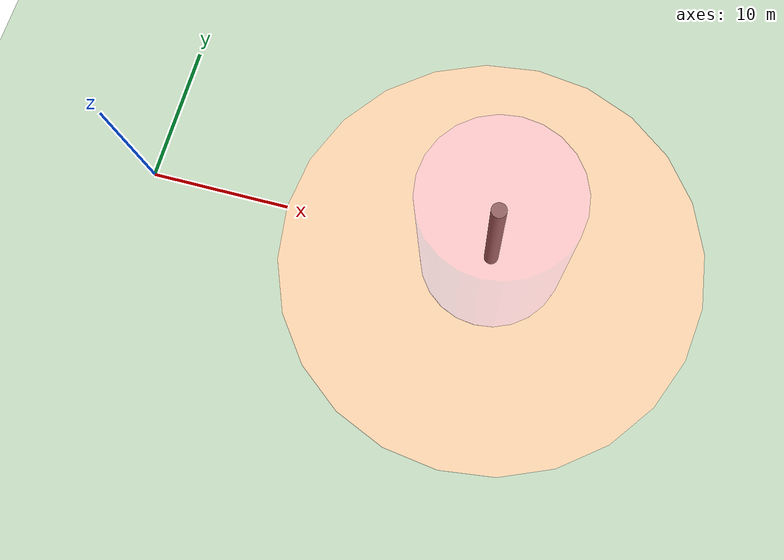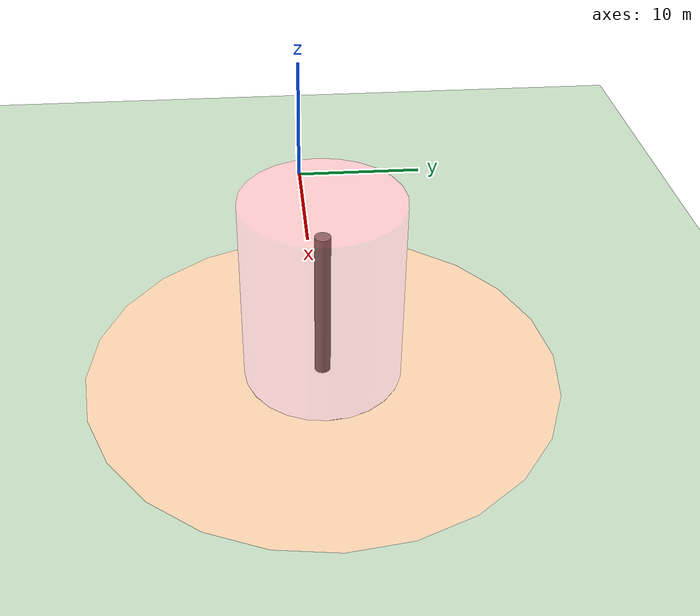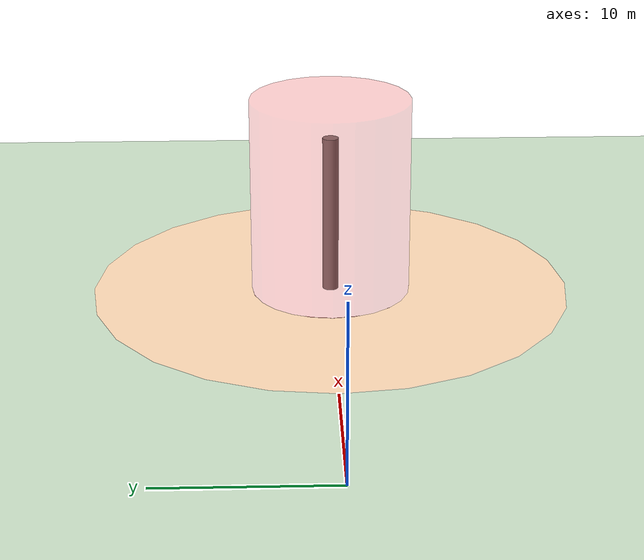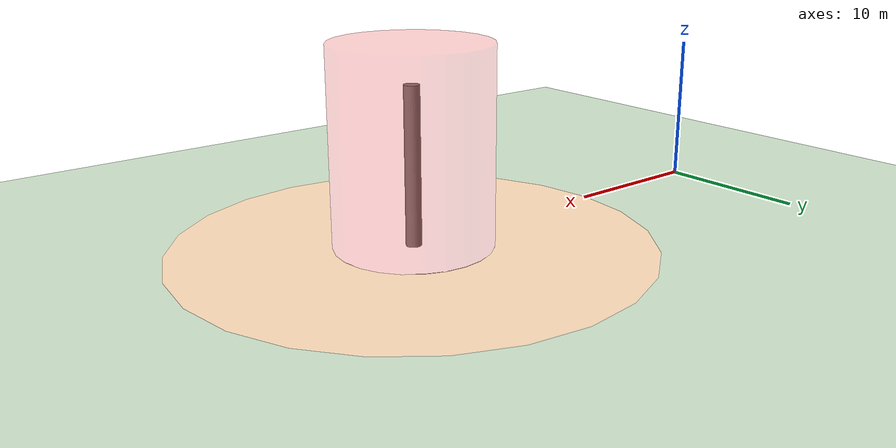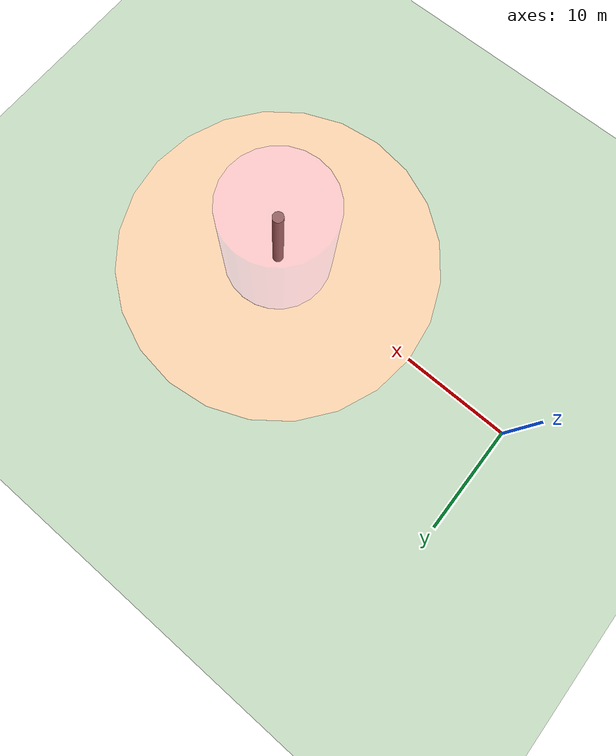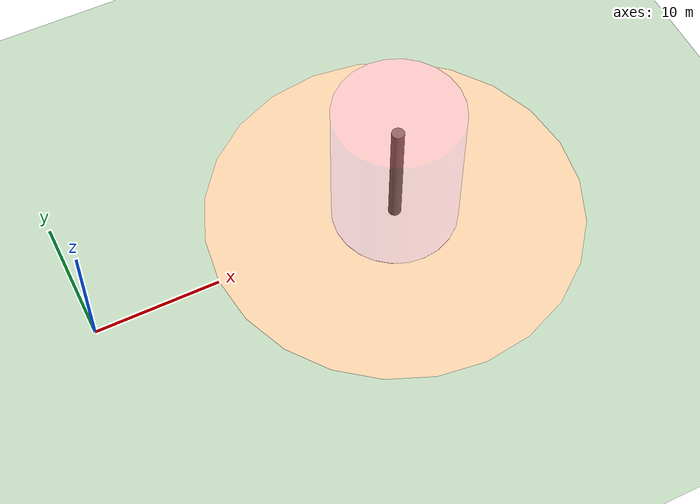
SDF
<sdf version="1.5">
 <world name="my_custom_world">
  <physics type="ode">
   <ode>
    <solver><type>quick</type><iters>100</iters><sor>1.0</sor></solver>
    <constraints>
     <cfm>0.0</cfm>
     <erp>0.9</erp>
     <contact_max_correcting_vel>0.1</contact_max_correcting_vel>
     <contact_surface_layer>0.0</contact_surface_layer>
    </constraints>
   </ode>
   <real_time_update_rate>1000</real_time_update_rate>
   <max_step_size>0.0010</max_step_size>
  </physics>
  <scene>
   <sky><clouds><speed>12</speed></clouds></sky>
   <ambient>0.4 0.4 0.4 1</ambient>
   <background>0.25 0.25 0.25 1</background>
  </scene>
  <model name="ground_plane">
   <static>true</static>
   <link name="link">
    <collision name="collision">
     <geometry><plane><normal>0 0 1</normal><size>5000 5000</size></plane></geometry>
     <surface><friction><ode><mu>1</mu><mu2>1</mu2></ode></friction></surface>
    </collision>
    <visual name="visual">
     <cast_shadows>false</cast_shadows>
     <geometry><plane><normal>0 0 1</normal><size>5000 5000</size></plane></geometry>
     <material>
      <script><uri>file://media/materials/scripts/gazebo.material</uri><name>Gazebo/Grass</name></script>
     </material>
    </visual>
   </link>
  </model>
  <include><uri>model://sun</uri></include>
  <model name="tower_with_sensors">
   <static>true</static>
   <pose>25 0 0 0 0 0</pose>
   <link name="base_link">
    <collision name="tower_collision">
     <geometry><cylinder><radius>0.5</radius><length>10.0</length></cylinder></geometry>
     <pose>0 0 5 0 0 0</pose>
    </collision>
    <visual name="tower_visual">
     <geometry><cylinder><radius>0.5</radius><length>10.0</length></cylinder></geometry>
     <material><ambient>0.6 0.6 0.6 1</ambient><diffuse>0.5 0.5 0.5 1</diffuse></material>
     <pose>0 0 5 0 0 0</pose>
    </visual>
    <sensor name="cam_north" type="camera">
     <pose>0.6 0 9.5 0 0 0</pose>
     <camera>
      <name>cam_north</name>
      <horizontal_fov>1.39626</horizontal_fov>
      <image><width>640</width><height>480</height><format>R8G8B8</format></image>
      <clip><near>0.1</near><far>100</far></clip>
     </camera>
     <always_on>true</always_on>
     <update_rate>30</update_rate>
     <visualize>true</visualize>
     <plugin name="cam_north_plugin" filename="libgazebo_ros_camera.so">
      <robotNamespace>/cam_north</robotNamespace>
      <cameraName>cam_north</cameraName>
     </plugin>
    </sensor>
    <sensor name="cam_east" type="camera">
     <pose>0 0.6 9.5 0 0 1.5708</pose>
     <camera>
      <name>cam_east</name>
      <horizontal_fov>1.39626</horizontal_fov>
      <image><width>640</width><height>480</height><format>R8G8B8</format></image>
      <clip><near>0.1</near><far>100</far></clip>
     </camera>
     <always_on>true</always_on>
     <update_rate>30</update_rate>
     <visualize>true</visualize>
     <plugin name="cam_east_plugin" filename="libgazebo_ros_camera.so">
      <robotNamespace>/cam_east</robotNamespace>
      <cameraName>cam_east</cameraName>
     </plugin>
    </sensor>
    <sensor name="cam_south" type="camera">
     <pose>-0.6 0 9.5 0 0 3.14159</pose>
     <camera>
      <name>cam_south</name>
      <horizontal_fov>1.39626</horizontal_fov>
      <image><width>640</width><height>480</height><format>R8G8B8</format></image>
      <clip><near>0.1</near><far>100</far></clip>
     </camera>
     <always_on>true</always_on>
     <update_rate>30</update_rate>
     <visualize>true</visualize>
     <plugin name="cam_south_plugin" filename="libgazebo_ros_camera.so">
      <robotNamespace>/cam_south</robotNamespace>
      <cameraName>cam_south</cameraName>
     </plugin>
    </sensor>
    <sensor name="cam_west" type="camera">
     <pose>0 -0.6 9.5 0 0 -1.5708</pose>
     <camera>
      <name>cam_west</name>
      <horizontal_fov>1.39626</horizontal_fov>
      <image><width>640</width><height>480</height><format>R8G8B8</format></image>
      <clip><near>0.1</near><far>100</far></clip>
     </camera>
     <always_on>true</always_on>
     <update_rate>30</update_rate>
     <visualize>true</visualize>
     <plugin name="cam_west_plugin" filename="libgazebo_ros_camera.so">
      <robotNamespace>/cam_west</robotNamespace>
      <cameraName>cam_west</cameraName>
     </plugin>
    </sensor>
    <sensor name="thermal_north" type="camera">
     <pose>0.6 0 9.0 0.2 0 0</pose>
     <camera>
      <name>thermal_north</name>
      <horizontal_fov>1.39626</horizontal_fov>
      <image><width>320</width><height>240</height><format>L8</format></image>
      <clip><near>0.1</near><far>100</far></clip>
     </camera>
     <always_on>true</always_on>
     <update_rate>15</update_rate>
     <visualize>true</visualize>
     <plugin name="thermal_north_plugin" filename="libgazebo_ros_camera.so">
      <robotNamespace>/thermal_north</robotNamespace>
      <cameraName>thermal_north</cameraName>
     </plugin>
    </sensor>
    <sensor name="thermal_east" type="camera">
     <pose>0 0.6 9.0 0.2 0 1.5708</pose>
     <camera>
      <name>thermal_east</name>
      <horizontal_fov>1.39626</horizontal_fov>
      <image><width>320</width><height>240</height><format>L8</format></image>
      <clip><near>0.1</near><far>100</far></clip>
     </camera>
     <always_on>true</always_on>
     <update_rate>15</update_rate>
     <visualize>true</visualize>
     <plugin name="thermal_east_plugin" filename="libgazebo_ros_camera.so">
      <robotNamespace>/thermal_east</robotNamespace>
      <cameraName>thermal_east</cameraName>
     </plugin>
    </sensor>
    <sensor name="thermal_south" type="camera">
     <pose>-0.6 0 9.0 0.2 0 3.14159</pose>
     <camera>
      <name>thermal_south</name>
      <horizontal_fov>1.39626</horizontal_fov>
      <image><width>320</width><height>240</height><format>L8</format></image>
      <clip><near>0.1</near><far>100</far></clip>
     </camera>
     <always_on>true</always_on>
     <update_rate>15</update_rate>
     <visualize>true</visualize>
     <plugin name="thermal_south_plugin" filename="libgazebo_ros_camera.so">
      <robotNamespace>/thermal_south</robotNamespace>
      <cameraName>thermal_south</cameraName>
     </plugin>
    </sensor>
    <sensor name="thermal_west" type="camera">
     <pose>0 -0.6 9.0 0.2 0 -1.5708</pose>
     <camera>
      <name>thermal_west</name>
      <horizontal_fov>1.39626</horizontal_fov>
      <image><width>320</width><height>240</height><format>L8</format></image>
      <clip><near>0.1</near><far>100</far></clip>
     </camera>
     <always_on>true</always_on>
     <update_rate>15</update_rate>
     <visualize>true</visualize>
     <plugin name="thermal_west_plugin" filename="libgazebo_ros_camera.so">
      <robotNamespace>/thermal_west</robotNamespace>
      <cameraName>thermal_west</cameraName>
     </plugin>
    </sensor>
   </link>
  </model>
  <model name="inner_nfz">
   <static>true</static>
   <pose>25 0 0 0 0 0</pose>
   <link name="nfz_link">
    <visual name="nfz_ground_marker">
     <geometry><cylinder><radius>5.0</radius><length>0.1</length></cylinder></geometry>
     <material><ambient>1 0 0 0.5</ambient><diffuse>1 0 0 0.5</diffuse></material>
     <pose>0 0 0.05 0 0 0</pose>
     <transparency>0.5</transparency>
    </visual>
    <visual name="nfz_cylinder_wall">
     <geometry><cylinder><radius>5.0</radius><length>20.0</length></cylinder></geometry>
     <material>
      <ambient>1 0 0 0.15</ambient>
      <diffuse>1 0 0 0.15</diffuse>
      <specular>0.1 0.1 0.1 0.15</specular>
     </material>
     <pose>0 0 2.5 0 0 0</pose>
     <transparency>0.85</transparency>
     <cast_shadows>false</cast_shadows>
    </visual>
   </link>
  </model>
  <model name="outer_nfz">
   <static>true</static>
   <pose>25 0 0 0 0 0</pose>
   <link name="nfz_link_outer">
    <visual name="nfz_ground_marker_outer">
     <geometry><cylinder><radius>15.0</radius><length>0.05</length></cylinder></geometry>
     <material><ambient>1 0.5 0 0.3</ambient><diffuse>1 0.5 0 0.3</diffuse></material>
     <pose>0 0 0.05 0 0 0</pose>
     <transparency>0.7</transparency>
    </visual>
   </link>
  </model>
 </world>
</sdf>
